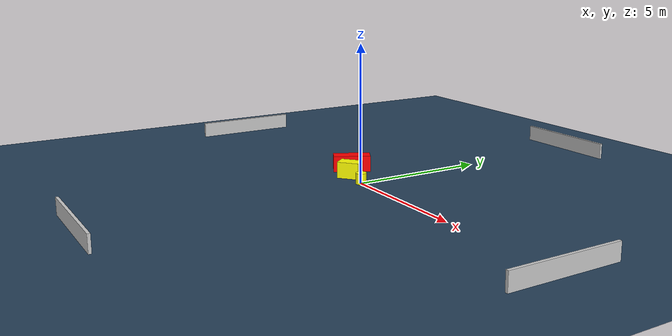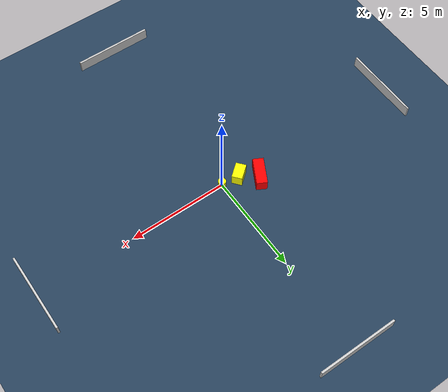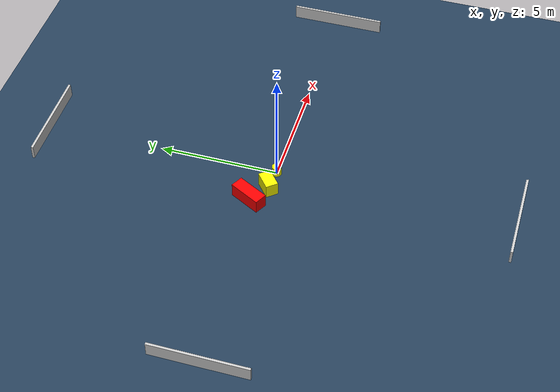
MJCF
<?xml version="1.0" ?>
<mujoco model="generated_environment">
  <option timestep="0.01" integrator="RK4" cone="elliptic"/>
  <default>
    <geom density="1"/>
  </default>
  <asset>
    <texture builtin="gradient" height="3072" name="skybox" rgb1="0.3 0.5 0.7" rgb2="0 0 0" type="skybox" width="512"/>
    <texture builtin="checker" height="300" name="groundplane" rgb1="0.2 0.3 0.4" rgb2="0.1 0.2 0.3" type="2d" width="300"/>
    <material name="groundplane" reflectance="0.2" texrepeat="5 5" texture="groundplane"/>
  </asset>
  <worldbody>
    <light dir="0 0 -1" directional="true" pos="0 0 1.5"/>
    <geom condim="3" friction="0.5 0.005 0.001" material="groundplane" name="floor" pos="0 0 0" size="0 0 0.05" type="plane"/>
    <body name="walls">
      <geom name="wall_1" condim="4" pos="-10.0 0.0 0.3" rgba="0.800000011920929 0.800000011920929 0.800000011920929 1.0" size="0.05 2.0 0.3" type="box"/>
      <geom name="wall_2" condim="4" pos="10.0 0.0 0.3" rgba="0.800000011920929 0.800000011920929 0.800000011920929 1.0" size="0.05 2.0 0.3" type="box"/>
      <geom name="wall_3" condim="4" pos="0.0 -10.0 0.3" rgba="0.800000011920929 0.800000011920929 0.800000011920929 1.0" size="2.0 0.05 0.3" type="box"/>
      <geom name="wall_4" condim="4" pos="0.0 10.0 0.3" rgba="0.800000011920929 0.800000011920929 0.800000011920929 1.0" size="2.0 0.05 0.3" type="box"/>
    </body>
    <body name="robot">
      <joint name="joint_x" type="slide" pos="0 0 0" axis="1 0 0"/>
      <joint name="joint_y" type="slide" pos="0 0 0" axis="0 1 0"/>
      <geom name="robot" type="cylinder" pos="0.0 0.0 0.2" size="0.2 0.2 0.0" mass="5.0" friction="1.0 0.005 0.0001" condim="4" rgba="1.0 1.0 0.0 1.0"/>
    </body>
    <body name="obstacle_1_movable">
      <geom name="obstacle_1_movable" condim="4" pos="-0.9280195575479905 0.0901326930277992 0.3" euler="0 0 129.3960898117892" friction="0.0 0.005 0.001" rgba="1.0 1.0 0.0 1.0" size="0.26086590335384047 0.40730085790355797 0.3" type="box" mass="0.1"/>
      <joint type="free"/>
    </body>
    <body name="obstacle_2_static">
      <geom name="obstacle_2_static" condim="4" pos="-1.7512480183727093 0.6619337272909064 0.3" euler="0 0 332.00193011329793" friction="0.0 0.005 0.001" rgba="1.0 0.0 0.0 1.0" size="0.2693916878422339 0.6915217850618587 0.3" type="box"/>
    </body>
  </worldbody>
  <actuator>
    <motor name="actuator_x" joint="joint_x" gear="1" ctrlrange="-1 1"/>
    <motor name="actuator_y" joint="joint_y" gear="1" ctrlrange="-1 1"/>
  </actuator>
</mujoco>
